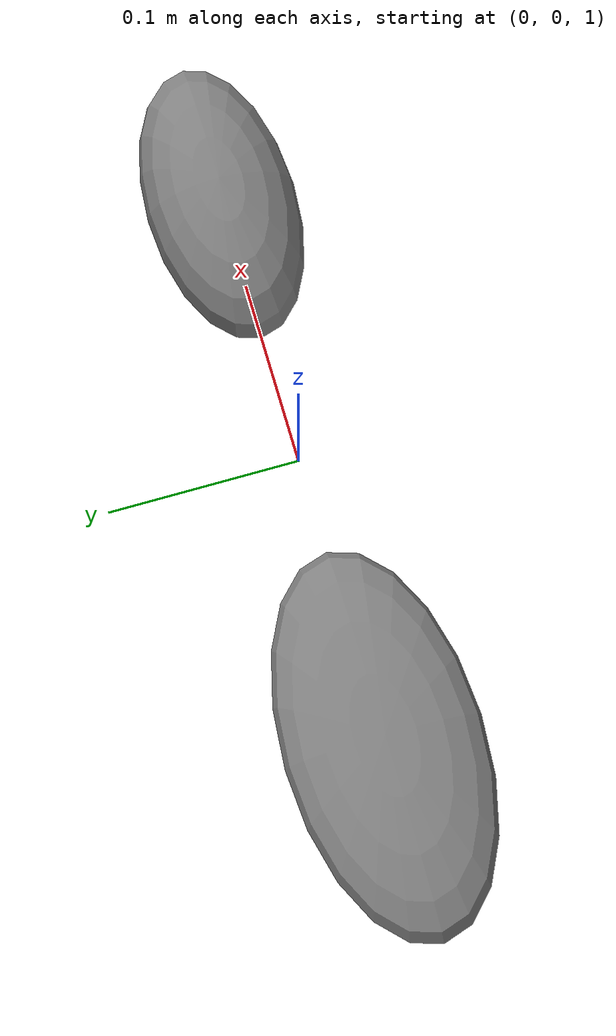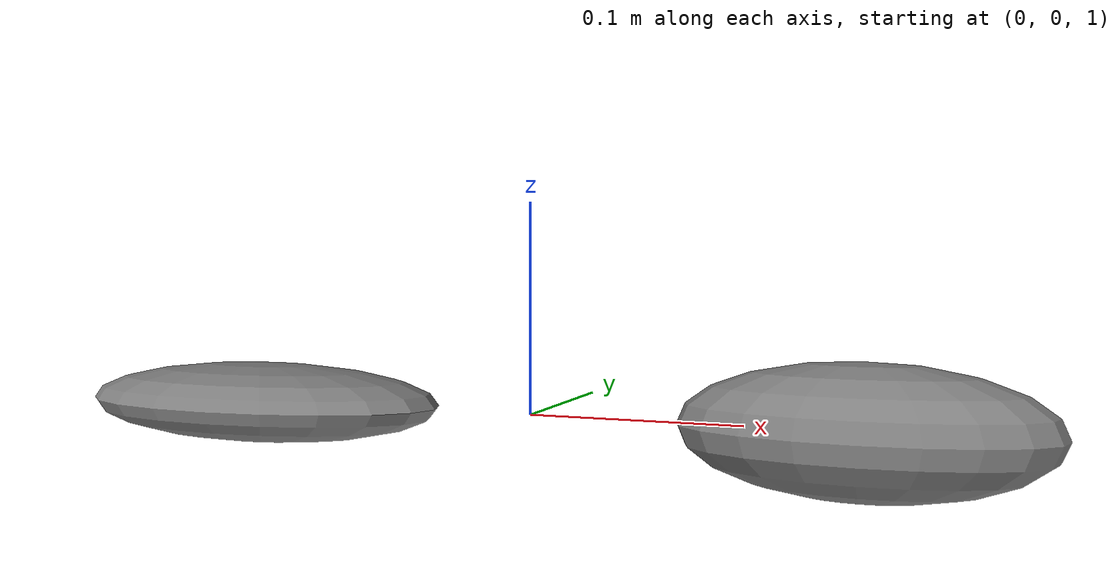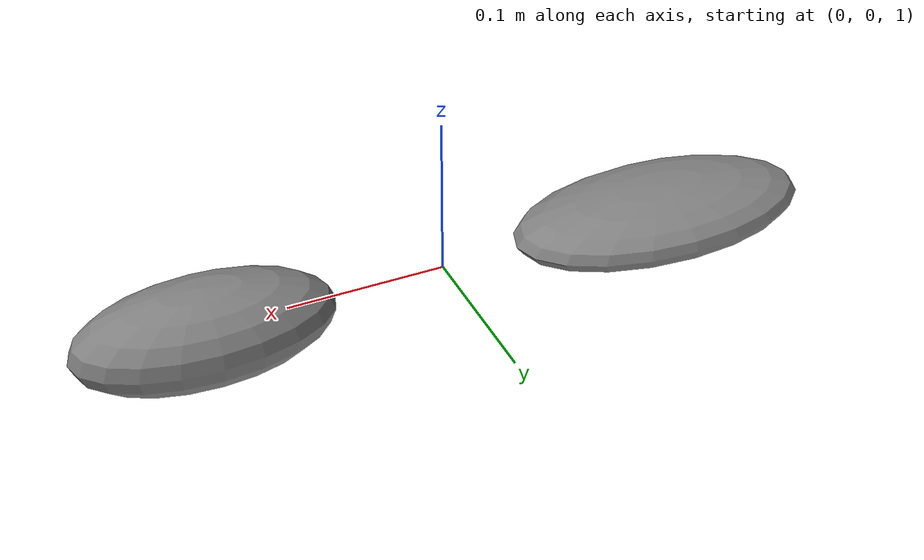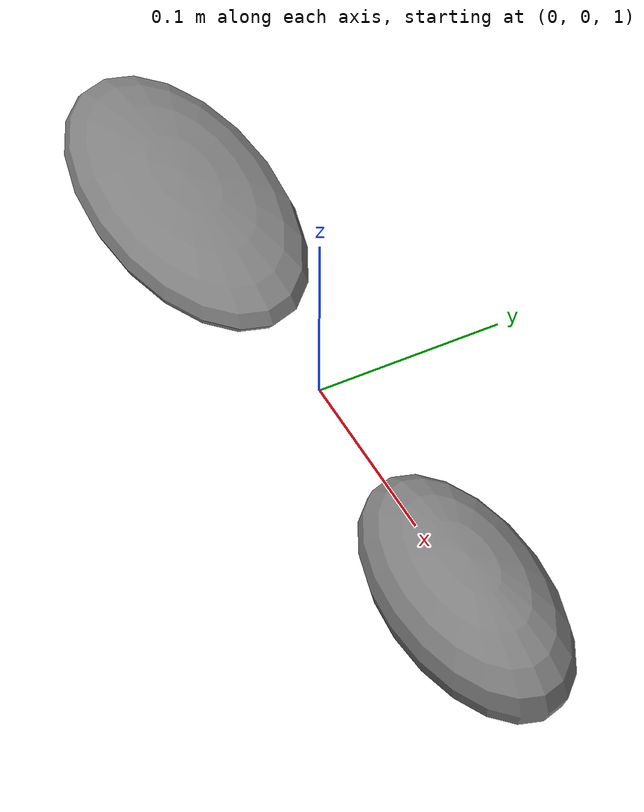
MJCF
<mujoco><option density="1.2" viscosity="0" integrator="implicit"/>
    <worldbody><body pos="0 0 1"><freejoint/>
    <geom type="ellipsoid" size="0.1 0.05 0.02" mass="0.5"
          fluidshape="ellipsoid" pos="-0.15 0 0"/>
    <geom type="ellipsoid" size="0.08 0.04 0.03" mass="0.5"
          fluidshape="ellipsoid" pos="0.15 0 0"/>
    </body></worldbody></mujoco>
